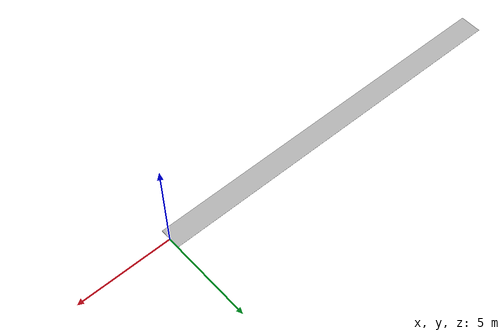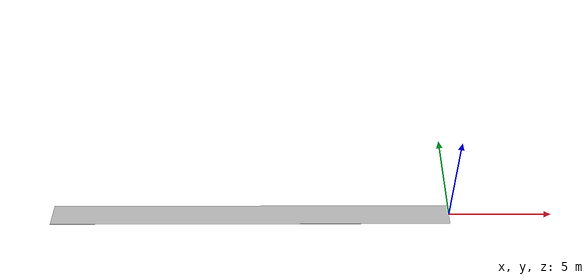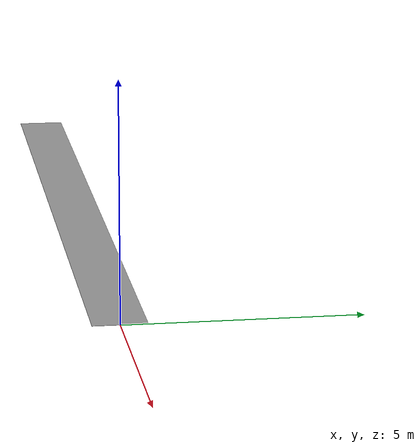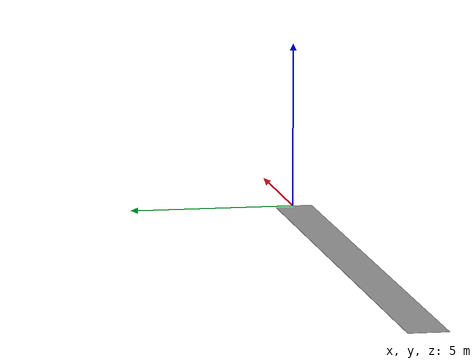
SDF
<?xml version='1.0'?>
<sdf version='1.6'>
  <model name='agv_path'>
    <static>true</static>

    <link name="link">
      <visual name="visual">
        <geometry>
          <mesh>
            <uri>model://agv_path/meshes/path.dae</uri>
          </mesh>
        </geometry>
      </visual>
    </link>
  </model>
</sdf>
